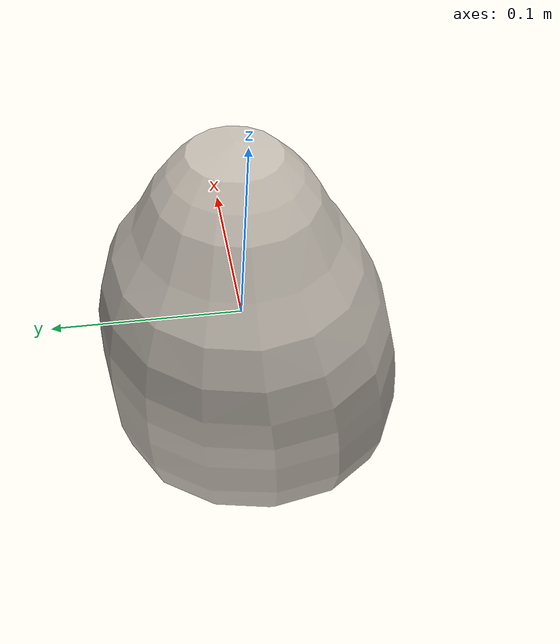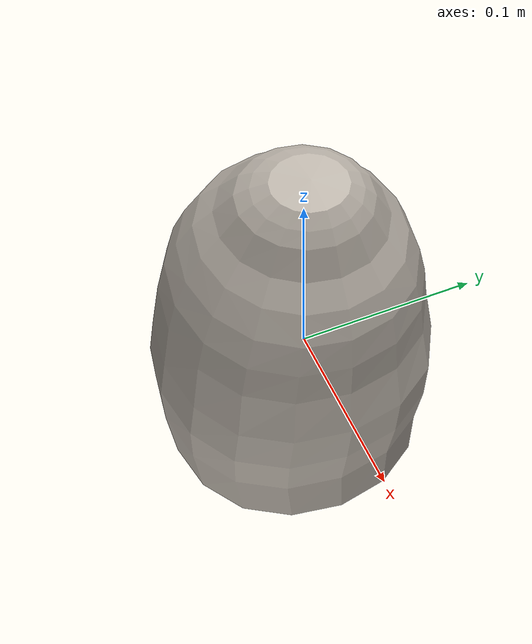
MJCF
<mujoco model="Lettuce_13">
  <compiler autolimits="true" boundmass="0.01" angle="radian"/>
  <default>
    <default class="/">
      <default class="__VISUAL_MJT__">
        <geom contype="0" conaffinity="0" group="0"/>
      </default>
      <default class="__STRUCTURAL_MJT__">
        <geom contype="8" conaffinity="15" group="4" friction="0.90000000000000002 0.90000000000000002 0.001" solref="0.025000000000000001 1" solimp="0.998 0.998 0.001"/>
      </default>
      <default class="__DYNAMIC_MJT__">
        <geom contype="1" conaffinity="15" group="4" friction="0.90000000000000002 0.90000000000000002 0.001" solref="0.025000000000000001 1" solimp="0.998 0.998 0.001"/>
      </default>
    </default>
  </default>
  <asset>
    <texture name="Lettuce2_Mat" type="2d" file="Lettuce2_AlbedoTransparency.png"/>
    <material name="material_Lettuce2_Mat" class="/" texture="Lettuce2_Mat" specular="0.5" shininess="0.5" rgba="1 1 1 1"/>
    <mesh name="Lettuce_13_lettuce_b4" class="/" file="Lettuce_13_lettuce_b4/Lettuce_13_lettuce_b4.obj" scale="1 1 1"/>
  </asset>
  <worldbody>
    <body name="Lettuce_13">
      <joint name="Lettuce_13_free" class="/" type="free" pos="0 0 0" axis="0 0 1" stiffness="0" range="0 0" armature="0" damping="0.10000000000000001" frictionloss="0"/>
      <body name="Lettuce_13_lettuce_b4" pos="-0.0074599999999999996 0.0112 0.016299999999999999" quat="1 0 0 0">
        <geom name="Lettuce_13_lettuce_b4" class="__VISUAL_MJT__" type="mesh" material="material_Lettuce2_Mat" shellinertia="true" mesh="Lettuce_13_lettuce_b4"/>
        <geom name="Lettuce_13_PrimitiveCollider_0" class="__DYNAMIC_MJT__" type="capsule" size="0.075611114501953125 0.024945721030235291" rgba="0 1 0 1" pos="-0.0074619492515921593 -0.011201914399862289 -0.023669891059398651" quat="0.99794430149276714 -0.050183240444219034 -0.002001893622674875 0.039809620929547575"/>
        <geom name="Lettuce_13_PrimitiveCollider_1" class="__DYNAMIC_MJT__" type="capsule" size="0.054963856935501099 0.0089346691966056824" rgba="0 1 0 1" pos="-0.0023647621273994446 0.00051661394536495209 0.027515187859535217" quat="0.99999999999891198 1.4751396607739272e-06 0 0"/>
      </body>
    </body>
  </worldbody>
</mujoco>
